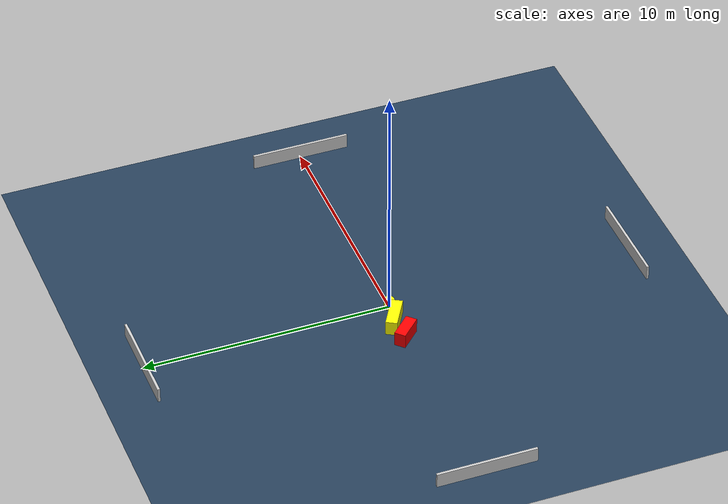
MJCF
<?xml version="1.0" ?>
<mujoco model="generated_environment">
  <option timestep="0.01" integrator="RK4" cone="elliptic"/>
  <default>
    <geom density="1"/>
  </default>
  <asset>
    <texture builtin="gradient" height="3072" name="skybox" rgb1="0.3 0.5 0.7" rgb2="0 0 0" type="skybox" width="512"/>
    <texture builtin="checker" height="300" name="groundplane" rgb1="0.2 0.3 0.4" rgb2="0.1 0.2 0.3" type="2d" width="300"/>
    <material name="groundplane" reflectance="0.2" texrepeat="5 5" texture="groundplane"/>
  </asset>
  <worldbody>
    <light dir="0 0 -1" directional="true" pos="0 0 1.5"/>
    <geom condim="3" friction="0.5 0.005 0.001" material="groundplane" name="floor" pos="0 0 0" size="0 0 0.05" type="plane"/>
    <body name="walls">
      <geom name="wall_1" condim="4" pos="-10.0 0.0 0.3" rgba="0.800000011920929 0.800000011920929 0.800000011920929 1.0" size="0.05 2.0 0.3" type="box"/>
      <geom name="wall_2" condim="4" pos="10.0 0.0 0.3" rgba="0.800000011920929 0.800000011920929 0.800000011920929 1.0" size="0.05 2.0 0.3" type="box"/>
      <geom name="wall_3" condim="4" pos="0.0 -10.0 0.3" rgba="0.800000011920929 0.800000011920929 0.800000011920929 1.0" size="2.0 0.05 0.3" type="box"/>
      <geom name="wall_4" condim="4" pos="0.0 10.0 0.3" rgba="0.800000011920929 0.800000011920929 0.800000011920929 1.0" size="2.0 0.05 0.3" type="box"/>
    </body>
    <body name="robot">
      <joint name="joint_x" type="slide" pos="0 0 0" axis="1 0 0"/>
      <joint name="joint_y" type="slide" pos="0 0 0" axis="0 1 0"/>
      <geom name="robot" type="cylinder" pos="0.0 0.0 0.2" size="0.2 0.2 0.0" mass="5.0" friction="1.0 0.005 0.0001" condim="4" rgba="1.0 1.0 0.0 1.0"/>
    </body>
    <body name="obstacle_1_movable">
      <geom name="obstacle_1_movable" condim="4" pos="-0.9601892887689473 0.16353459851386173 0.3" euler="0 0 239.58109679413158" friction="0.0 0.005 0.001" rgba="1.0 1.0 0.0 1.0" size="0.22718169224847004 0.6780968720695387 0.3" type="box" mass="0.1"/>
      <joint type="free"/>
    </body>
    <body name="obstacle_2_static">
      <geom name="obstacle_2_static" condim="4" pos="-1.9108299856758053 0.059703069277484394 0.3" euler="0 0 134.64533349784548" friction="0.0 0.005 0.001" rgba="1.0 0.0 0.0 1.0" size="0.5393435021993291 0.22589734167139686 0.3" type="box"/>
    </body>
  </worldbody>
  <actuator>
    <motor name="actuator_x" joint="joint_x" gear="1" ctrlrange="-1 1"/>
    <motor name="actuator_y" joint="joint_y" gear="1" ctrlrange="-1 1"/>
  </actuator>
</mujoco>
